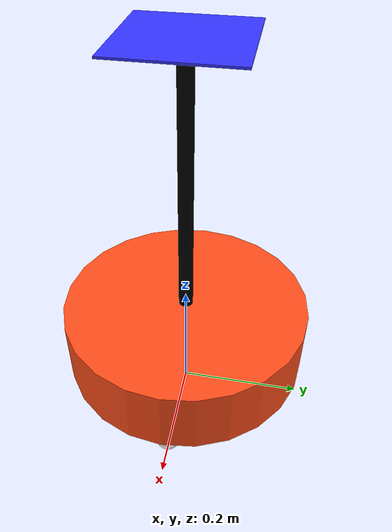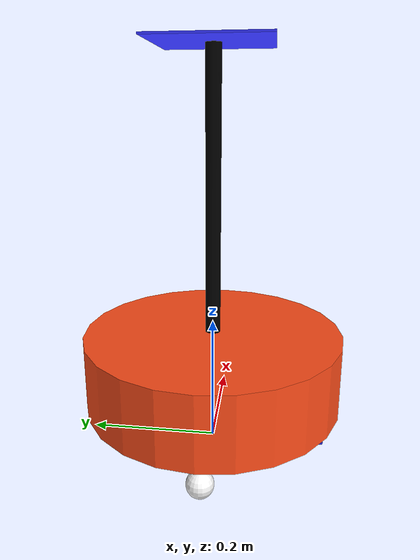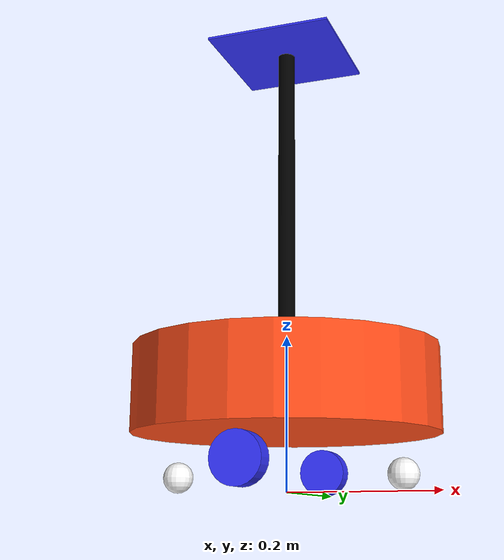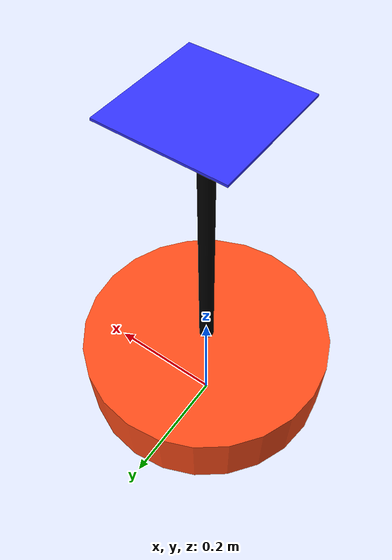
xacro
<?xml version="1.0"?>
<robot xmlns:xacro="http://www.ros.org/wiki/xacro" >

    <xacro:include filename="inertial_macros.xacro"/>

    <xacro:property name="chassis_radius" value="0.20"/>
    <xacro:property name="chassis_length" value="0.112"/>
    <xacro:property name="chassis_height" value="0.072"/>
    <xacro:property name="chassis_mass" value="2.0"/>
    <xacro:property name="tripod_radius" value="0.0115"/>
    <xacro:property name="tripod_length" value="0.441"/>
    <xacro:property name="tripod_mass" value="1.0"/>
    <xacro:property name="holder_length" value="0.17"/>
    <xacro:property name="holder_width" value="0.17"/>
    <xacro:property name="holder_height" value="0.003"/>
    <xacro:property name="holder_mass" value="0.1"/>
    <xacro:property name="wheel_radius" value="0.03185"/>
    <xacro:property name="wheel_thickness" value="0.0255"/>
    <xacro:property name="wheel_mass" value="0.05"/>
    <xacro:property name="wheel_offset_x" value="0.0"/>
    <xacro:property name="wheel_offset_y" value="0.164"/>
    <xacro:property name="wheel_offset_z" value="${-chassis_height-chassis_length/2+wheel_radius}"/>
    <xacro:property name="caster_wheel_radius" value="0.02"/>
    <xacro:property name="caster_wheel_mass" value="0.04"/>
    <xacro:property name="caster_wheel_offset_x" value="0.1515"/>
    <xacro:property name="caster_wheel_offset_z" value="${wheel_offset_z - wheel_radius + caster_wheel_radius}"/>

    <material name="white">
        <color rgba="1 1 1 1" />
    </material>

    <material name="orange">
        <color rgba="1 0.3 0.1 1"/>
    </material>

    <material name="blue">
        <color rgba="0.2 0.2 1 1"/>
    </material>

    <material name="black">
        <color rgba="0 0 0 1"/>
    </material>

    <material name="red">
        <color rgba="1 0 0 1"/>
    </material>

    <!-- BASE LINK -->

    <link name="base_link">

    </link>

    <!-- BASE_FOOTPRINT LINK -->

    <joint name="base_footprint_joint" type="fixed">
        <parent link="base_link"/>
        <child link="base_footprint"/>
        <origin xyz="0 0 0" rpy="0 0 0"/>
    </joint>

    <link name="base_footprint">
    </link>

    <!-- CHASSIS LINK -->

    <joint name="chassis_joint" type="fixed">
        <parent link="base_link"/>
        <child link="chassis"/>
        <origin xyz="0 0 ${chassis_height+chassis_length/2}"/>
    </joint>

    <link name="chassis">
        <visual>
            <origin xyz = "0 0 0"/>
            <geometry>
                <cylinder length="${chassis_length}" radius="${chassis_radius}"/>
            </geometry>
            <material name="orange"/>
        </visual>
        <collision>
            <origin xyz = "0 0 ${chassis_length/2}"/>
            <geometry>
                <cylinder length="${chassis_length}" radius="${chassis_radius}"/>
            </geometry>
        </collision>
        <xacro:inertial_cylinder mass="${chassis_mass}" length="${chassis_length}" radius="${chassis_radius}">
            <origin xyz="0 0 ${chassis_length/2}" rpy="0 0 0"/>
        </xacro:inertial_cylinder>
    </link>

    <gazebo reference="chassis">
        <material>Gazebo/Orange</material>
    </gazebo>

    <!-- TRIPOD -->

    <joint name="tripod_joint" type="fixed">
        <parent link="chassis"/>
        <child link="tripod"/>
        <origin xyz="0 0 ${chassis_height/2}"/>
    </joint>

    <link name="tripod">
        <visual>
            <origin xyz = "0 0 ${tripod_length/2}"/>
            <geometry>
                <cylinder length="${tripod_length}" radius="${tripod_radius}"/>
            </geometry>
            <material name="black"/>
        </visual>
        <collision>
            <origin xyz = "0 0 ${tripod_length/2}"/>
            <geometry>
                <cylinder length="${tripod_length}" radius="${tripod_radius}"/>
            </geometry>
        </collision>
        <xacro:inertial_cylinder mass="${tripod_mass}" length="${tripod_length}" radius="${tripod_radius}">
            <origin xyz="0 0 ${tripod_length/2}" rpy="0 0 0"/>
        </xacro:inertial_cylinder>
    </link>

    <gazebo reference="tripod">
        <material>Gazebo/Black</material>
    </gazebo>

    <!-- HOLDER -->

    <joint name="holder_joint" type="fixed">
        <parent link="tripod"/>
        <child link="holder"/>
        <origin xyz="0 0 ${tripod_length}"/>
    </joint>

    <link name="holder">
        <visual>
            <origin xyz = "0 0 ${holder_height/2}"/>
            <geometry>
                <box size="${holder_length} ${holder_width} ${holder_height}"/>
            </geometry>
            <material name="blue"/>
        </visual>
        <collision>
            <origin xyz = "0 0 ${holder_length/2}"/>
            <geometry>
                <box size="${holder_length} ${holder_width} ${holder_height}"/>
            </geometry>
        </collision>
        <xacro:inertial_box mass="${holder_mass}" x="${holder_length}" y="${holder_width}" z="${holder_height}">
            <origin xyz="${holder_length/2} 0 ${holder_height/2}" rpy="0 0 0"/>
        </xacro:inertial_box>
    </link>

    <gazebo reference="holder">
        <material>Gazebo/Blue</material>
    </gazebo>

    <!-- LEFT WHEEL LINK -->

    <joint name="left_wheel_joint" type="continuous">
        <parent link="chassis"/>
        <child link="left_wheel"/>
        <origin xyz="0 ${wheel_offset_y} ${wheel_offset_z}" rpy="-${pi/2} 0 0" />
        <axis xyz="0 0 1"/>
    </joint>

    <link name="left_wheel">
        <visual>
            <geometry>
                <cylinder radius="${wheel_radius}" length="${wheel_thickness}"/>
            </geometry>
            <material name="blue"/>
        </visual>
        <collision>
            <geometry>
                <sphere radius="${wheel_radius}"/>
            </geometry>
        </collision>
        <xacro:inertial_cylinder mass="${wheel_mass}" length="${wheel_thickness}" radius="${wheel_radius}">
            <origin xyz="0 0 0" rpy="0 0 0"/>
        </xacro:inertial_cylinder>
    </link>

    <gazebo reference="left_wheel">
        <material>Gazebo/Blue</material>
    </gazebo>

    <!-- RIGHT WHEEL LINK -->

    <joint name="right_wheel_joint" type="continuous">
        <parent link="chassis"/>
        <child link="right_wheel"/>
        <origin xyz="0 ${-wheel_offset_y} ${wheel_offset_z}" rpy="${pi/2} 0 0" />
        <axis xyz="0 0 -1"/>
    </joint>

    <link name="right_wheel">
        <visual>
            <geometry>
                <cylinder radius="${wheel_radius}" length="${wheel_thickness}"/>
            </geometry>
            <material name="blue"/>
        </visual>
        <collision>
            <geometry>
                <sphere radius="${wheel_radius}"/>
            </geometry>
        </collision>
        <xacro:inertial_cylinder mass="${wheel_mass}" length="${wheel_thickness}" radius="${wheel_radius}">
            <origin xyz="0 0 0" rpy="0 0 0"/>
        </xacro:inertial_cylinder>
    </link>

    <gazebo reference="right_wheel">
        <material>Gazebo/Blue</material>
    </gazebo>

    <!-- FRONT CASTER WHEEL LINK -->

    <joint name="front_caster_wheel_joint" type="fixed">
        <parent link="chassis"/>
        <child link="front_caster_wheel"/>
        <origin xyz="${caster_wheel_offset_x} 0 ${caster_wheel_offset_z}"/>
    </joint>

    <link name="front_caster_wheel">
        <visual>
            <geometry>
                <sphere radius="${caster_wheel_radius}"/>
            </geometry>
            <material name="white"/>
        </visual>
        <collision>
            <geometry>
                <sphere radius="${caster_wheel_radius}"/>
            </geometry>
        </collision>
        <xacro:inertial_sphere mass="${caster_wheel_mass}" radius="${caster_wheel_radius}">
            <origin xyz="0 0 0" rpy="0 0 0"/>
        </xacro:inertial_sphere>
    </link>

    <gazebo reference="front_caster_wheel">
        <material>Gazebo/White</material>
        <mu1 value="0.001"/>
        <mu2 value="0.001"/>
    </gazebo>

    <!-- REAR CASTER WHEEL LINK -->

    <joint name="rear_caster_wheel_joint" type="fixed">
        <parent link="chassis"/>
        <child link="rear_caster_wheel"/>
        <origin xyz="${-caster_wheel_offset_x} 0 ${caster_wheel_offset_z}"/>
    </joint>

    <link name="rear_caster_wheel">
        <visual>
            <geometry>
                <sphere radius="${caster_wheel_radius}"/>
            </geometry>
            <material name="white"/>
        </visual>
        <collision>
            <geometry>
                <sphere radius="${caster_wheel_radius}"/>
            </geometry>
        </collision>
        <xacro:inertial_sphere mass="${caster_wheel_mass}" radius="${caster_wheel_radius}">
            <origin xyz="0 0 0" rpy="0 0 0"/>
        </xacro:inertial_sphere>
    </link>

    <gazebo reference="rear_caster_wheel">
        <material>Gazebo/White</material>
        <mu1 value="0.001"/>
        <mu2 value="0.001"/>
    </gazebo>

</robot>
